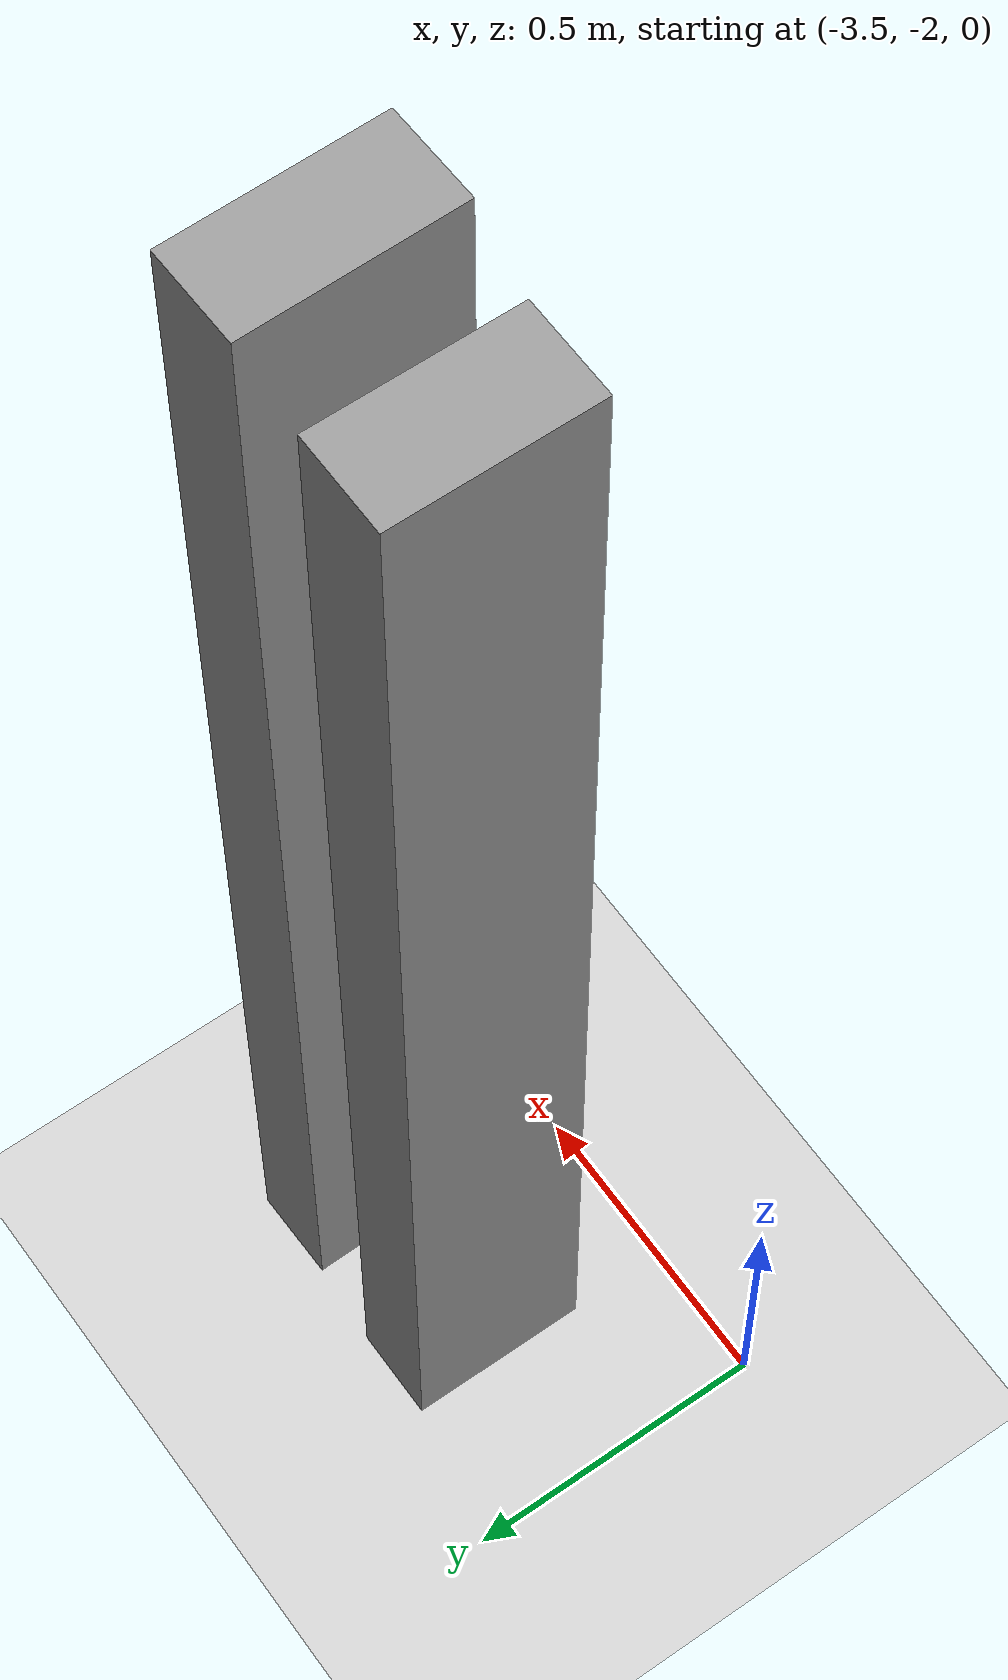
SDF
<sdf version='1.7'>
    <world name='default'>
      <include>
        <uri>model://sun</uri>
      </include>
      <include>
        <uri>model://ground_plane</uri>
      </include>
  <model name='test_wall_file'>
    <pose>-1.6105 -0.934711 0 0 -0 0</pose>
    <link name='Wall_0'>
      <collision name='Wall_0_Collision'>
        <geometry>
          <box>
            <size>0.294591 0.15 2.5</size>
          </box>
        </geometry>
        <pose>0 0 1.25 0 -0 0</pose>
      </collision>
      <visual name='Wall_0_Visual'>
        <pose>0 0 1.25 0 -0 0</pose>
        <geometry>
          <box>
            <size>0.294591 0.15 2.5</size>
          </box>
        </geometry>
        <material>
          <script>
            <uri>file://media/materials/scripts/gazebo.material</uri>
            <name>Gazebo/Grey</name>
          </script>
          <ambient>1 1 1 1</ambient>
        </material>
        <meta>
          <layer>0</layer>
        </meta>
      </visual>
      <pose>-1.5855 -0.75879 0 0 -0 1.5708</pose>
    </link>
    <link name='Wall_2'>
      <collision name='Wall_2_Collision'>
        <geometry>
          <box>
            <size>0.316961 0.15 2.5</size>
          </box>
        </geometry>
        <pose>0 0 1.25 0 -0 0</pose>
      </collision>
      <visual name='Wall_2_Visual'>
        <pose>0 0 1.25 0 -0 0</pose>
        <geometry>
          <box>
            <size>0.316961 0.15 2.5</size>
          </box>
        </geometry>
        <material>
          <script>
            <uri>file://media/materials/scripts/gazebo.material</uri>
            <name>Gazebo/Grey</name>
          </script>
          <ambient>1 1 1 1</ambient>
        </material>
        <meta>
          <layer>0</layer>
        </meta>
      </visual>
      <pose>-1.298 -0.775789 0 0 -0 1.58952</pose>
    </link>
    <static>1</static>
  </model>
  </world>
</sdf>
